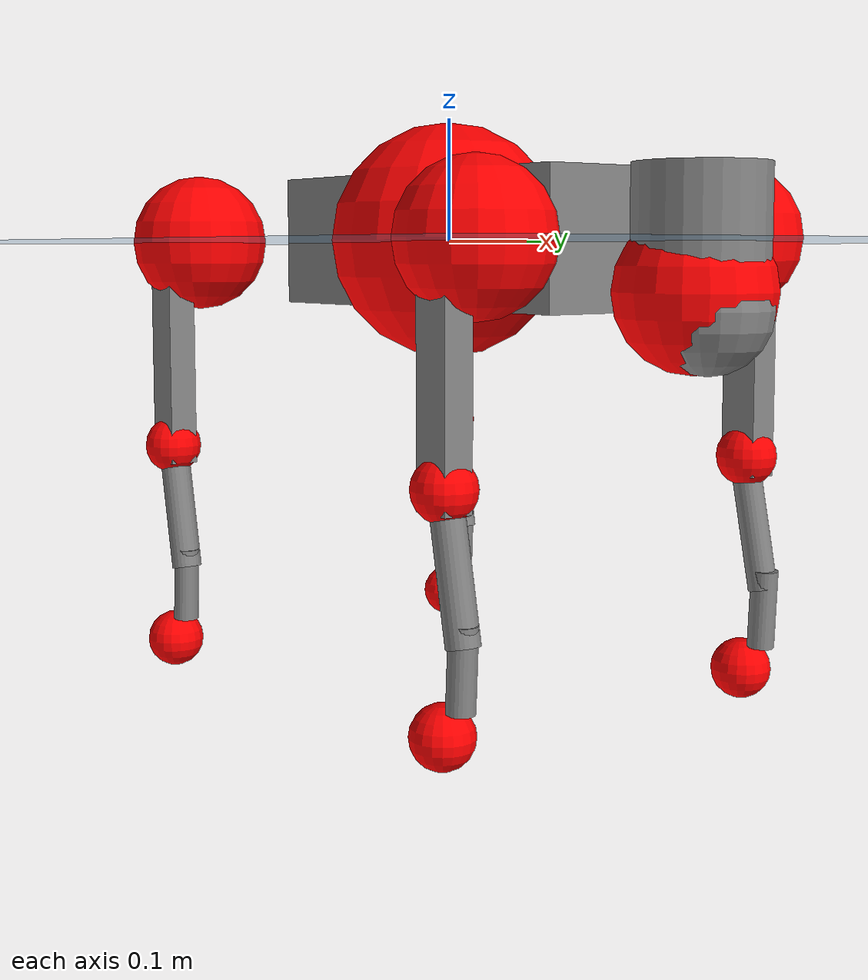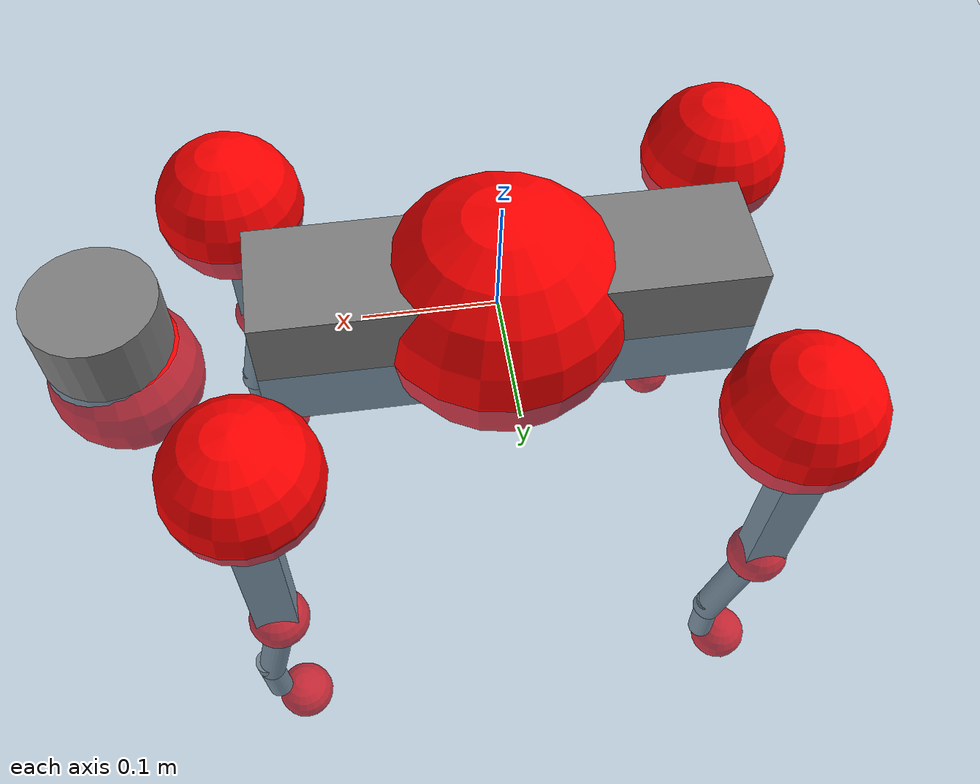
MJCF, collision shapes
<mujoco model="go2">
  <compiler angle="radian" assetdir="assets" balanceinertia="true" inertiafromgeom="false"/>

  <option timestep="0.005" density="1.2" viscosity="2e-05"/>

  <size nkey="1"/>

  <visual>
    <quality shadowsize="8192"/>
    <map shadowclip="0.5"/>
  </visual>

  <default>
    <default class="/">
      <geom contype="0" conaffinity="0" group="1" solref="-1000 -80"/>
      <site size="0.01 0.005 0.005" group="5"/>
      <general forcelimited="true" biastype="affine" gainprm="20" biasprm="0 -20 -0.5"/>
      <default class="go2">
        <joint armature="0.01" damping="0.01" frictionloss="0.2"/>
        <geom condim="1" margin="0.001"/>
        <default class="visual">
          <geom type="mesh" group="2"/>
        </default>
        <default class="collision">
          <geom group="3"/>
          <default class="foot">
            <geom size="0.022 0 0" condim="6" priority="1" friction="0.8 0.02 0.01" solimp="0.015 1 0.022"/>
          </default>
        </default>
        <default class="reward_collision_sphere">
          <geom group="5" rgba="1 0 0 1"/>
        </default>
      </default>
    </default>
  </default>

  <asset>
    <texture type="skybox" colorspace="auto" name="//unnamed_texture_0" builtin="gradient" rgb1="0.95 0.95 0.95" rgb2="0.95 0.95 0.95" width="100" height="600"/>
    <texture type="2d" colorspace="auto" name="texplane" builtin="checker" rgb1="0.345 0.575 0.748" rgb2="0.345 0.575 0.748" markrgb="1 1 1" width="512" height="512"/>
    <material name="MatPlane" class="/" texture="texplane" texuniform="true" texrepeat="2 2" specular="0.9"/>
    <material name="metal" class="/" rgba="0.9 0.95 0.95 1"/>
    <material name="black" class="/" rgba="0 0 0 1"/>
    <material name="white" class="/"/>
    <material name="gray" class="/" rgba="0.671705 0.692426 0.77427 1"/>
    <mesh name="base_0" class="/" file="base_0.obj"/>
    <mesh name="base_1" class="/" file="base_1.obj"/>
    <mesh name="base_2" class="/" file="base_2.obj"/>
    <mesh name="base_3" class="/" file="base_3.obj"/>
    <mesh name="base_4" class="/" file="base_4.obj"/>
    <mesh name="hip_0" class="/" file="hip_0.obj"/>
    <mesh name="hip_1" class="/" file="hip_1.obj"/>
    <mesh name="thigh_0" class="/" file="thigh_0.obj"/>
    <mesh name="thigh_1" class="/" file="thigh_1.obj"/>
    <mesh name="thigh_mirror_0" class="/" file="thigh_mirror_0.obj"/>
    <mesh name="thigh_mirror_1" class="/" file="thigh_mirror_1.obj"/>
    <mesh name="calf_0" class="/" file="calf_0.obj"/>
    <mesh name="calf_1" class="/" file="calf_1.obj"/>
    <mesh name="calf_mirror_0" class="/" file="calf_mirror_0.obj"/>
    <mesh name="calf_mirror_1" class="/" file="calf_mirror_1.obj"/>
    <mesh name="foot" class="/" file="foot.obj"/>
  </asset>

  <worldbody>
    <geom name="floor" class="/" size="100 100 0.125" type="plane" group="0" material="MatPlane"/>
    <light name="toplight_shadow" class="/" pos="0 0 5" dir="0.0990148 0.0990148 -0.990148" type="directional" ambient="0.04 0.04 0.04" diffuse="0.55 0.55 0.55" specular="0.12 0.12 0.12"/>
    <light name="toplight_fill" class="/" pos="0 0 5" dir="0.0990148 0.0990148 -0.990148" type="directional" castshadow="false" ambient="0.04 0.04 0.04" diffuse="0.3 0.3 0.3" specular="0.08 0.08 0.08"/>
    <body name="trunk" childclass="go2" pos="-0.00185548 -3.28802e-05 0.000986297" quat="1 0.000313656 3.39449e-05 -0.000236583">
      <inertial pos="0.0189358 -0.000355706 -0.00428367" quat="0.00137652 0.711553 0.00181955 0.702628" mass="6.18884" diaginertia="0.111907 0.138914 0.00908635"/>
      <joint name="//unnamed_joint_0" type="free" armature="0" damping="0" frictionloss="0"/>
      <geom name="//unnamed_geom_1" class="visual" material="black" mesh="base_0"/>
      <geom name="//unnamed_geom_2" class="visual" material="black" mesh="base_1"/>
      <geom name="//unnamed_geom_3" class="visual" material="black" mesh="base_2"/>
      <geom name="//unnamed_geom_4" class="visual" material="white" mesh="base_3"/>
      <geom name="//unnamed_geom_5" class="visual" material="gray" mesh="base_4"/>
      <geom name="trunk_1" class="collision" size="0.181461 0.0451001 0.0549883" type="box"/>
      <geom name="trunk_2" class="collision" size="0.0482354 0.0434118" pos="0.286936 0 0.00817085" type="cylinder"/>
      <geom name="trunk_3" class="collision" size="0.0453412" pos="0.294991 0 -0.0490251"/>
      <geom name="//unnamed_geom_9" class="reward_collision_sphere" size="0.0964707"/>
      <geom name="//unnamed_geom_10" class="reward_collision_sphere" size="0.0578824" pos="0.281902 0 -0.0367688"/>
      <site name="imu" pos="-0.0273015 -0.00462131 0.0369133" size="0.00964707"/>
      <camera name="track" pos="0 -2.14049 0" quat="0.707107 0.707107 0 0" mode="trackcom"/>
      <camera name="ego_camera" pos="0.31412 0 0.0367688" quat="-0.5 -0.5 0.5 0.5"/>
      <body name="FL_hip" pos="0.194745 0.0506333 0.00126286" quat="1 0.000845537 0.000150757 0.000121058">
        <inertial pos="-0.00743246 0.00317826 0.000666677" quat="0.497127 0.499209 0.505432 0.498191" mass="0.614002" diaginertia="0.000923737 0.000832347 0.000175782"/>
        <joint name="FL_hip_joint" pos="0 0 0" axis="0.999997 0.00222569 -0.000228128" stiffness="0.00220675" range="-1.04975 1.02276" armature="0.009872" damping="0.00278647" frictionloss="0.183221"/>
        <geom name="//unnamed_geom_11" class="visual" material="metal" mesh="hip_0"/>
        <geom name="//unnamed_geom_12" class="visual" material="gray" mesh="hip_1"/>
        <geom name="//unnamed_geom_13" class="collision" size="0.0443765 0.0192941" pos="0 0.0856194 0" quat="0.707107 0.707107 0 0" type="cylinder"/>
        <geom name="//unnamed_geom_14" class="reward_collision_sphere" size="0.0578824" pos="0 0.074917 0"/>
        <body name="FL_thigh" pos="-0.000510089 0.102653 0.00109374" quat="1 5.92485e-06 0.000186972 0.000120896">
          <inertial pos="-0.00202634 -0.0230892 -0.0252373" quat="0.829458 0.0854515 -0.0191264 0.551662" mass="1.04024" diaginertia="0.00613236 0.00817409 0.000324561"/>
          <joint name="FL_thigh_joint" pos="0 0 0" axis="-0.00112034 0.999999 -0.00124142" stiffness="0.0140131" range="-1.58397 3.50726" armature="0.00981489" damping="0" frictionloss="0.183921"/>
          <geom name="//unnamed_geom_15" class="visual" material="metal" mesh="thigh_0"/>
          <geom name="//unnamed_geom_16" class="visual" material="gray" mesh="thigh_1"/>
          <geom name="//unnamed_geom_17" class="collision" size="0.102741 0.0118177 0.0164" pos="0 0 -0.0870195" quat="0.707107 0 0.707107 0" type="box"/>
          <body name="FL_calf" pos="-0.000463292 -0.000465938 -0.174602" quat="1 0.00015834 -9.63009e-05 -8.80245e-05">
            <inertial pos="0.00583373 -0.00128063 -0.115591" quat="0.706884 0.00492875 -0.00315928 0.707305" mass="0.215089" diaginertia="0.00155529 0.00203051 1.93862e-05"/>
            <joint name="FL_calf_joint" pos="0 0 0" axis="-0.0061551 0.999967 -0.00527065" stiffness="0.000125889" range="-2.73619 -0.854258" armature="0.0100506" damping="0.00594246" frictionloss="0.188068"/>
            <geom name="//unnamed_geom_18" class="visual" material="gray" mesh="calf_0"/>
            <geom name="//unnamed_geom_19" class="visual" material="black" mesh="calf_1"/>
            <geom name="FL_calf0" class="collision" size="0.0115765 0.0578824" pos="0.00805435 0 -0.0490251" quat="0.994493 0 -0.104807 0" type="cylinder"/>
            <geom name="//unnamed_geom_21" class="collision" size="0.0106118 0.031353" pos="0.0201359 0 -0.120929" quat="0.999688 0 0.0249974 0" type="cylinder"/>
            <geom name="//unnamed_geom_22" class="visual" pos="0 0 -0.174039" quat="1 0 0 0" material="black" mesh="foot"/>
            <geom name="FL_foot" class="foot" size="0.0148152" pos="-0.00201359 0 -0.174039"/>
            <geom name="//unnamed_geom_24" class="reward_collision_sphere" size="0.0241177"/>
            <geom name="//unnamed_geom_25" class="reward_collision_sphere" size="0.0241177" pos="-0.00201359 0 -0.174039"/>
            <site name="FL_foot" class="foot" pos="-0.00201359 0 -0.174039" size="0.00964707"/>
          </body>
        </body>
      </body>
      <body name="FR_hip" pos="0.19493 -0.0478645 0.000490628" quat="1 -0.000107716 0.000397327 -8.79315e-05">
        <inertial pos="-0.00427006 -0.00234346 -0.000198277" quat="0.498225 0.505777 0.498981 0.49697" mass="0.626426" diaginertia="0.000909233 0.000836946 0.000175605"/>
        <joint name="FR_hip_joint" pos="0 0 0" axis="0.999991 0.00257057 -0.00337247" range="-1.06279 1.05178" armature="0.00866242" damping="0.0207737" frictionloss="0.211542"/>
        <geom name="//unnamed_geom_26" class="visual" pos="0 2.20541e-09 9.45945e-08" quat="4.63268e-05 1 0 0" material="metal" mesh="hip_0"/>
        <geom name="//unnamed_geom_27" class="visual" pos="0 3.57523e-09 -2.33968e-07" quat="4.63268e-05 1 0 0" material="gray" mesh="hip_1"/>
        <geom name="//unnamed_geom_28" class="collision" size="0.0443765 0.0192941" pos="0 -0.0856194 0" quat="0.707107 0.707107 0 0" type="cylinder"/>
        <geom name="//unnamed_geom_29" class="reward_collision_sphere" size="0.0578824" pos="0 -0.074917 0"/>
        <body name="FR_thigh" pos="0.000272029 -0.101824 0.00213866" quat="1 0.000170014 0.000358463 -0.000644163">
          <inertial pos="-0.00371302 0.0219314 -0.0260131" quat="0.551603 -0.0182729 0.0829069 0.829775" mass="1.0182" diaginertia="0.00622749 0.0084019 0.000320757"/>
          <joint name="FR_thigh_joint" pos="0 0 0" axis="0.00221293 -0.999993 -0.00288009" range="-3.47855 1.58968" armature="0.00969687" damping="0.011703" frictionloss="0.183285"/>
          <geom name="//unnamed_geom_30" class="visual" material="metal" mesh="thigh_mirror_0"/>
          <geom name="//unnamed_geom_31" class="visual" material="gray" mesh="thigh_mirror_1"/>
          <geom name="//unnamed_geom_32" class="collision" size="0.102741 0.0118177 0.0164" pos="0 0 -0.0870195" quat="0.707107 0 0.707107 0" type="box"/>
          <body name="FR_calf" pos="-0.000630774 0.000672593 -0.173613" quat="1 -1.53034e-05 3.02036e-05 -4.15337e-06">
            <inertial pos="0.00553789 0.000765144 -0.115146" quat="0.704266 -0.00528109 -0.000650059 0.709916" mass="0.217936" diaginertia="0.00157975 0.0020731 1.95415e-05"/>
            <joint name="FR_calf_joint" pos="0 0 0" axis="-0.00808859 -0.999965 -0.00235848" range="0.834081 2.71563" armature="0.00973051" damping="0.00668309" frictionloss="0.190351"/>
            <geom name="//unnamed_geom_33" class="visual" material="gray" mesh="calf_mirror_0"/>
            <geom name="//unnamed_geom_34" class="visual" material="black" mesh="calf_mirror_1"/>
            <geom name="FR_calf0" class="collision" size="0.0125412 0.0578824" pos="0.0100679 0 -0.0490251" quat="0.995004 0 -0.0998334 0" type="cylinder"/>
            <geom name="//unnamed_geom_36" class="collision" size="0.0106118 0.031353" pos="0.0201359 0 -0.120929" quat="0.999688 0 0.0249974 0" type="cylinder"/>
            <geom name="//unnamed_geom_37" class="visual" pos="0 0 -0.174039" quat="1 0 0 0" material="black" mesh="foot"/>
            <geom name="FR_foot" class="foot" size="0.0225756" pos="-0.00201359 0 -0.174039"/>
            <geom name="//unnamed_geom_39" class="reward_collision_sphere" size="0.0241177"/>
            <geom name="//unnamed_geom_40" class="reward_collision_sphere" size="0.0241177" pos="-0.00201359 0 -0.174039"/>
            <site name="FR_foot" class="foot" pos="-0.00201359 0 -0.174039" size="0.00964707"/>
          </body>
        </body>
      </body>
      <body name="RL_hip" pos="-0.193652 0.0485222 -0.000789333" quat="0.999999 -0.000208499 0.000909885 -0.000729008">
        <inertial pos="0.0070996 0.00181284 0.000477672" quat="0.505521 0.498195 0.496976 0.499265" mass="0.607802" diaginertia="0.000913608 0.000839131 0.000175488"/>
        <joint name="RL_hip_joint" pos="0 0 0" axis="-0.999865 0.0163795 0.00114301" range="-1.05378 1.05774" armature="0.00961572" damping="0.0135782" frictionloss="0.183561"/>
        <geom name="//unnamed_geom_41" class="visual" pos="-1.65267e-09 0 -3.23961e-07" quat="4.63268e-05 0 1 0" material="metal" mesh="hip_0"/>
        <geom name="//unnamed_geom_42" class="visual" pos="-2.67918e-09 0 -2.87308e-07" quat="4.63268e-05 0 1 0" material="gray" mesh="hip_1"/>
        <geom name="//unnamed_geom_43" class="collision" size="0.0443765 0.0192941" pos="0 0.0856194 0" quat="0.707107 0.707107 0 0" type="cylinder"/>
        <geom name="//unnamed_geom_44" class="reward_collision_sphere" size="0.0578824" pos="0 0.074917 0"/>
        <body name="RL_thigh" pos="-0.00179314 0.100614 -0.000116881" quat="1 0.000224632 -0.000527209 0.000672281">
          <inertial pos="-0.00351085 -0.0240962 -0.0271218" quat="0.832058 0.0860445 -0.0237674 0.547459" mass="1.02057" diaginertia="0.00610695 0.00813375 0.000316508"/>
          <joint name="RL_thigh_joint" pos="0 0 0" axis="0.00126754 0.999987 -0.00499785" stiffness="0.00167138" range="-0.532331 4.53226" armature="0.00971367" damping="0" frictionloss="0.20153"/>
          <geom name="//unnamed_geom_45" class="visual" material="metal" mesh="thigh_0"/>
          <geom name="//unnamed_geom_46" class="visual" material="gray" mesh="thigh_1"/>
          <geom name="//unnamed_geom_47" class="collision" size="0.102741 0.0118177 0.0164" pos="0 0 -0.0870195" quat="0.707107 0 0.707107 0" type="box"/>
          <body name="RL_calf" pos="0.000644218 -0.00115106 -0.175522" quat="1 7.42648e-05 -0.000153867 6.8539e-05">
            <inertial pos="0.00629542 -0.000686525 -0.116062" quat="0.71095 0.00134777 -0.00425621 0.703229" mass="0.21775" diaginertia="0.00153882 0.00205134 1.93578e-05"/>
            <joint name="RL_calf_joint" pos="0 0 0" axis="-0.00777799 0.99997 -0.000422478" stiffness="0.00102559" range="-2.71175 -0.834883" armature="0.0100165" damping="0" frictionloss="0.196215"/>
            <geom name="//unnamed_geom_48" class="visual" material="gray" mesh="calf_0"/>
            <geom name="//unnamed_geom_49" class="visual" material="black" mesh="calf_1"/>
            <geom name="RL_calf0" class="collision" size="0.0125412 0.0578824" pos="0.0100679 0 -0.0490251" quat="0.995004 0 -0.0998334 0" type="cylinder"/>
            <geom name="//unnamed_geom_51" class="collision" size="0.0106118 0.031353" pos="0.0201359 0 -0.120929" quat="0.999688 0 0.0249974 0" type="cylinder"/>
            <geom name="//unnamed_geom_52" class="visual" pos="0 0 -0.174039" quat="1 0 0 0" material="black" mesh="foot"/>
            <geom name="RL_foot" class="foot" size="0.0194454" pos="-0.00201359 0 -0.174039"/>
            <geom name="//unnamed_geom_54" class="reward_collision_sphere" size="0.0241177"/>
            <geom name="//unnamed_geom_55" class="reward_collision_sphere" size="0.0241177" pos="-0.00201359 0 -0.174039"/>
            <site name="RL_foot" class="foot" pos="-0.00201359 0 -0.174039" size="0.00964707"/>
          </body>
        </body>
      </body>
      <body name="RR_hip" pos="-0.194982 -0.0524328 -0.0017063" quat="1 -1.44372e-05 -2.52809e-05 -4.76106e-05">
        <inertial pos="0.00550846 -0.00123801 -6.38265e-05" quat="0.494729 0.494217 0.502662 0.508255" mass="0.611851" diaginertia="0.000910858 0.000836287 0.000177695"/>
        <joint name="RR_hip_joint" pos="0 0 0" axis="-0.999999 0.000735384 0.00119503" range="-1.0397 1.04372" armature="0.0105805" damping="0.0169898" frictionloss="0.181071"/>
        <geom name="//unnamed_geom_56" class="visual" pos="1.65487e-09 2.20541e-09 -4.18556e-07" quat="2.14617e-09 4.63268e-05 4.63268e-05 -1" material="metal" mesh="hip_0"/>
        <geom name="//unnamed_geom_57" class="visual" pos="2.67374e-09 3.57523e-09 -5.33393e-08" quat="2.14617e-09 4.63268e-05 4.63268e-05 -1" material="gray" mesh="hip_1"/>
        <geom name="//unnamed_geom_58" class="collision" size="0.0443765 0.0192941" pos="0 -0.0856194 0" quat="0.707107 0.707107 0 0" type="cylinder"/>
        <geom name="//unnamed_geom_59" class="reward_collision_sphere" size="0.0578824" pos="0 -0.074917 0"/>
        <body name="RR_thigh" pos="0.000503873 -0.1026 -0.0023729" quat="1 -5.54117e-06 -1.50064e-05 -1.50899e-05">
          <inertial pos="-0.00349299 0.024746 -0.0269668" quat="0.551227 -0.0194043 0.0854683 0.829739" mass="1.05903" diaginertia="0.00630622 0.00828438 0.000317823"/>
          <joint name="RR_thigh_joint" pos="0 0 0" axis="-0.00152593 -0.999998 -0.00109837" range="-4.56849 0.515564" armature="0.00925395" damping="0.0193467" frictionloss="0.197049"/>
          <geom name="//unnamed_geom_60" class="visual" material="metal" mesh="thigh_mirror_0"/>
          <geom name="//unnamed_geom_61" class="visual" material="gray" mesh="thigh_mirror_1"/>
          <geom name="//unnamed_geom_62" class="collision" size="0.102741 0.0118177 0.0164" pos="0 0 -0.0870195" quat="0.707107 0 0.707107 0" type="box"/>
          <body name="RR_calf" pos="-0.00191151 -0.00114797 -0.175182" quat="1 0.000161464 -0.000163461 5.46512e-05">
            <inertial pos="0.0083011 0.000434711 -0.116506" quat="0.701642 -0.00034524 0.00186659 0.712527" mass="0.216931" diaginertia="0.0014893 0.00199949 1.88364e-05"/>
            <joint name="RR_calf_joint" pos="0 0 0" axis="-0.0016448 -0.999983 -0.00557773" range="0.843169 2.77082" armature="0.00935442" damping="0.0130994" frictionloss="0.188453"/>
            <geom name="//unnamed_geom_63" class="visual" material="gray" mesh="calf_mirror_0"/>
            <geom name="//unnamed_geom_64" class="visual" material="black" mesh="calf_mirror_1"/>
            <geom name="RR_calf0" class="collision" size="0.0125412 0.0578824" pos="0.0100679 0 -0.0490251" quat="0.995004 0 -0.0998334 0" type="cylinder"/>
            <geom name="//unnamed_geom_66" class="collision" size="0.0106118 0.031353" pos="0.0201359 0 -0.120929" quat="0.999688 0 0.0249974 0" type="cylinder"/>
            <geom name="//unnamed_geom_67" class="visual" pos="0 0 -0.174039" quat="1 0 0 0" material="black" mesh="foot"/>
            <geom name="RR_foot" class="foot" size="0.0230259" pos="-0.00201359 0 -0.174039"/>
            <geom name="//unnamed_geom_69" class="reward_collision_sphere" size="0.0241177"/>
            <geom name="//unnamed_geom_70" class="reward_collision_sphere" size="0.0241177" pos="-0.00201359 0 -0.174039"/>
            <site name="RR_foot" class="foot" pos="-0.00201359 0 -0.174039" size="0.00964707"/>
          </body>
        </body>
      </body>
    </body>
  </worldbody>

  <contact>
    <pair class="/" geom1="floor" geom2="FL_foot" name="//unnamed_contact_0"/>
    <pair class="/" geom1="floor" geom2="FR_foot" name="//unnamed_contact_1"/>
    <pair class="/" geom1="floor" geom2="RL_foot" name="//unnamed_contact_2"/>
    <pair class="/" geom1="floor" geom2="RR_foot" name="//unnamed_contact_3"/>
  </contact>

  <actuator>
    <general name="FL_hip" class="/" joint="FL_hip_joint" forcerange="-22.5662 22.5662" gainprm="19.389" biasprm="0 -19.389 -0.485213"/>
    <general name="FL_thigh" class="/" joint="FL_thigh_joint" forcerange="-23.6412 23.6412" gainprm="19.389" biasprm="0 -19.389 -0.485213"/>
    <general name="FL_calf" class="/" joint="FL_calf_joint" forcerange="-43.72 43.72" gainprm="19.389" biasprm="0 -19.389 -0.485213"/>
    <general name="FR_hip" class="/" joint="FR_hip_joint" forcerange="-24.6368 24.6368" gainprm="19.389" biasprm="0 -19.389 -0.485213"/>
    <general name="FR_thigh" class="/" joint="FR_thigh_joint" forcerange="-22.9719 22.9719" gainprm="19.389" biasprm="0 -19.389 -0.485213"/>
    <general name="FR_calf" class="/" joint="FR_calf_joint" forcerange="-42.9081 42.9081" gainprm="19.389" biasprm="0 -19.389 -0.485213"/>
    <general name="RL_hip" class="/" joint="RL_hip_joint" forcerange="-22.4144 22.4144" gainprm="19.389" biasprm="0 -19.389 -0.485213"/>
    <general name="RL_thigh" class="/" joint="RL_thigh_joint" forcerange="-22.5175 22.5175" gainprm="19.389" biasprm="0 -19.389 -0.485213"/>
    <general name="RL_calf" class="/" joint="RL_calf_joint" forcerange="-44.7561 44.7561" gainprm="19.389" biasprm="0 -19.389 -0.485213"/>
    <general name="RR_hip" class="/" joint="RR_hip_joint" forcerange="-23.3432 23.3432" gainprm="19.389" biasprm="0 -19.389 -0.485213"/>
    <general name="RR_thigh" class="/" joint="RR_thigh_joint" forcerange="-23.458 23.458" gainprm="19.389" biasprm="0 -19.389 -0.485213"/>
    <general name="RR_calf" class="/" joint="RR_calf_joint" forcerange="-46.6747 46.6747" gainprm="19.389" biasprm="0 -19.389 -0.485213"/>
  </actuator>

  <sensor>
    <gyro site="imu" name="imu_angular_velocity"/>
    <velocimeter site="imu" name="imu_linear_velocity"/>
    <framelinvel objtype="site" objname="FL_foot" name="FL_foot_global_linear_velocity"/>
    <framelinvel objtype="site" objname="FR_foot" name="FR_foot_global_linear_velocity"/>
    <framelinvel objtype="site" objname="RL_foot" name="RL_foot_global_linear_velocity"/>
    <framelinvel objtype="site" objname="RR_foot" name="RR_foot_global_linear_velocity"/>
  </sensor>

  <keyframe>
    <key name="home" qpos="0 0 0.325 1 0 0 0 0.1 0.8 -1.5 -0.1 -0.8 1.5 -0.1 0.8 -1.5 0.1 -0.8 1.5"/>
  </keyframe>
</mujoco>
